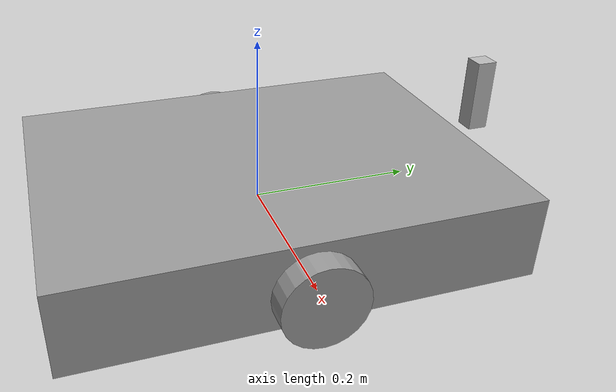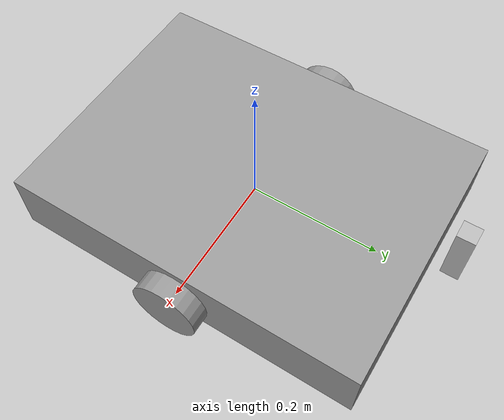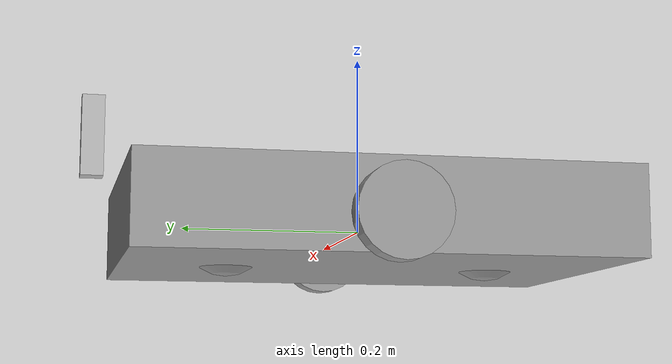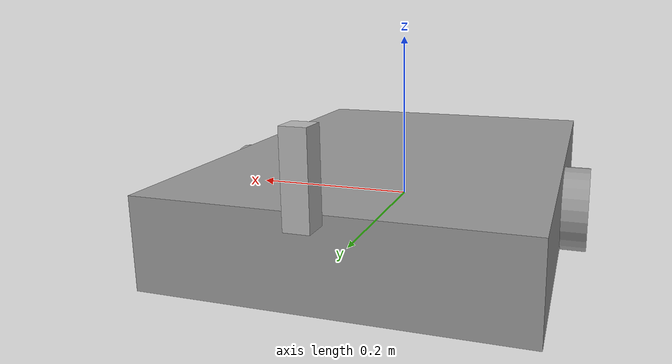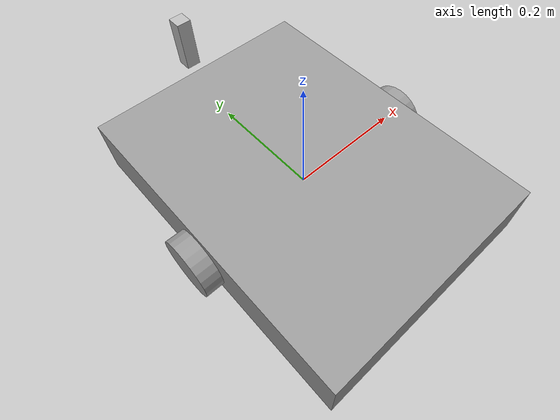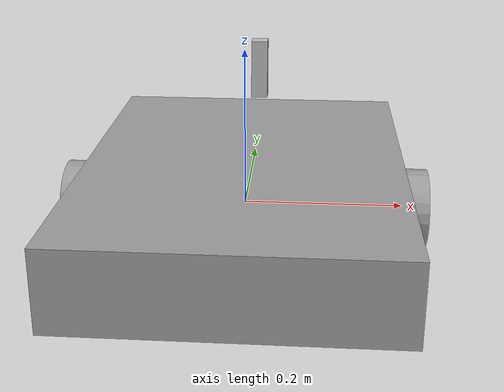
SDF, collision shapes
<?xml version='1.0'?>
<sdf version='1.7'>
  <model name='truck03'><!--Tを削除-->
    <link name='link_0'>
      <inertial>
        <mass>1</mass>
        <inertia>
          <ixx>0.166667</ixx>
          <ixy>0</ixy>
          <ixz>0</ixz>
          <iyy>0.166667</iyy>
          <iyz>0</iyz>
          <izz>0.166667</izz>
        </inertia>
        <pose>0 0 0 0 -0 0</pose>
      </inertial>
      <pose>0 0 0.008 0 -0 0</pose>
      <gravity>1</gravity>
      <self_collide>0</self_collide>
      <kinematic>0</kinematic>
      <enable_wind>0</enable_wind>
      <visual name='visual'>
        <pose>0 0 0 0 -0 0</pose>
        <geometry>
          <box>
            <size>0.4 0.54 0.1</size>
          </box>
        </geometry>
        <material>
          <lighting>1</lighting>
          <script>
            <uri>file://media/materials/scripts/gazebo.material</uri>
            <name>Gazebo/Grey</name>
          </script>
          <shader type='pixel'>
            <normal_map>__default__</normal_map>
          </shader>
          <ambient>0 0 0 1</ambient>
          <diffuse>0 0 0 1</diffuse>
          <specular>0 0 0 1</specular>
          <emissive>0 0 0 1</emissive>
        </material>
        <transparency>0</transparency>
        <cast_shadows>1</cast_shadows>
      </visual>
      <collision name='collision'>
        <laser_retro>0</laser_retro>
        <max_contacts>10</max_contacts>
        <pose>0 0 0 0 -0 0</pose>
        <geometry>
          <box>
            <size>0.4 0.54 0.1</size>
          </box>
        </geometry>
        <surface>
          <friction>
            <ode>
              <mu>1</mu>
              <mu2>1</mu2>
              <fdir1>0 0 0</fdir1>
              <slip1>0</slip1>
              <slip2>0</slip2>
            </ode>
            <torsional>
              <coefficient>1</coefficient>
              <patch_radius>0</patch_radius>
              <surface_radius>0</surface_radius>
              <use_patch_radius>1</use_patch_radius>
              <ode>
                <slip>0</slip>
              </ode>
            </torsional>
          </friction>
          <bounce>
            <restitution_coefficient>0</restitution_coefficient>
            <threshold>1e+06</threshold>
          </bounce>
          <contact>
            <collide_without_contact>0</collide_without_contact>
            <collide_without_contact_bitmask>1</collide_without_contact_bitmask>
            <collide_bitmask>1</collide_bitmask>
            <ode>
              <soft_cfm>0</soft_cfm>
              <soft_erp>0.2</soft_erp>
              <kp>1e+13</kp>
              <kd>1</kd>
              <max_vel>0.01</max_vel>
              <min_depth>0</min_depth>
            </ode>
            <bullet>
              <split_impulse>1</split_impulse>
              <split_impulse_penetration_threshold>-0.01</split_impulse_penetration_threshold>
              <soft_cfm>0</soft_cfm>
              <soft_erp>0.2</soft_erp>
              <kp>1e+13</kp>
              <kd>1</kd>
            </bullet>
          </contact>
        </surface>
      </collision>
    </link>

    <plugin name="gazebo_ros_diff_drive" filename="libgazebo_ros_diff_drive.so">
      <ros>
        <!-- ROSパラメーターの設定 -->
        <namespace>/</namespace>
        <remapping>cmd_vel:=cmd_vel</remapping>
      </ros>
      <left_joint>link_0_JOINT_1</left_joint>
      <right_joint>link_0_JOINT_0</right_joint>
      <legacy_mode>false</legacy_mode>
      <publish_odom>true</publish_odom>
      <publish_odom_tf>true</publish_odom_tf>
      <command_topic>cmd_vel</command_topic>
      <odometry_frame>odom</odometry_frame>
      <odometry_topic>odom</odometry_topic>
      <robot_base_frame>base_footprint</robot_base_frame>
      <!-- 車輪の間隔と直径 -->
      <update_rate>20</update_rate>
      <wheel_separation>0.43</wheel_separation>
      <wheel_diameter>0.1</wheel_diameter>
      <!-- モータの最大トルク -->
      <torque>15</torque>
      <command_timeout>0.5</command_timeout>
      <publish_wheel_tf>true</publish_wheel_tf>
      <publish_wheel_joint_state>true</publish_wheel_joint_state>
    </plugin>

    <link name='link_5'>
      <inertial>
        <mass>7</mass>
        <inertia>
          <ixx>0.1</ixx>
          <ixy>0</ixy>
          <ixz>0</ixz>
          <iyy>0.1</iyy>
          <iyz>0</iyz>
          <izz>0.1</izz>
        </inertia>
        <pose>0 0 0 0 -0 0</pose>
      </inertial>
      <pose>0 0.15 -0.002 0 -0 0</pose>
      <gravity>1</gravity>
      <self_collide>0</self_collide>
      <kinematic>0</kinematic>
      <enable_wind>0</enable_wind>
      <visual name='visual'>
        <pose>0 0 0 0 -0 0</pose>
        <geometry>
          <sphere>
            <radius>0.05</radius>
          </sphere>
        </geometry>
        <material>
          <lighting>1</lighting>
          <script>
            <uri>file://media/materials/scripts/gazebo.material</uri>
            <name>Gazebo/Grey</name>
          </script>
          <shader type='pixel'>
            <normal_map>__default__</normal_map>
          </shader>
          <ambient>0.3 0.3 0.3 1</ambient>
          <diffuse>0.7 0.7 0.7 1</diffuse>
          <specular>0.01 0.01 0.01 1</specular>
          <emissive>0 0 0 1</emissive>
        </material>
        <transparency>0</transparency>
        <cast_shadows>1</cast_shadows>
      </visual>
      <collision name='collision'>
        <laser_retro>0</laser_retro>
        <max_contacts>10</max_contacts>
        <pose>0 0 0 0 -0 0</pose>
        <geometry>
          <sphere>
            <radius>0.05</radius>
          </sphere>
        </geometry>
        <surface>
          <friction>
            <ode>
              <mu>1</mu>
              <mu2>1</mu2>
              <fdir1>0 0 0</fdir1>
              <slip1>0</slip1>
              <slip2>0</slip2>
            </ode>
            <torsional>
              <coefficient>1</coefficient>
              <patch_radius>0</patch_radius>
              <surface_radius>0</surface_radius>
              <use_patch_radius>1</use_patch_radius>
              <ode>
                <slip>0</slip>
              </ode>
            </torsional>
          </friction>
          <bounce>
            <restitution_coefficient>0</restitution_coefficient>
            <threshold>1e+06</threshold>
          </bounce>
          <contact>
            <collide_without_contact>0</collide_without_contact>
            <collide_without_contact_bitmask>1</collide_without_contact_bitmask>
            <collide_bitmask>1</collide_bitmask>
            <ode>
              <soft_cfm>0</soft_cfm>
              <soft_erp>0.2</soft_erp>
              <kp>1e+13</kp>
              <kd>1</kd>
              <max_vel>0.01</max_vel>
              <min_depth>0</min_depth>
            </ode>
            <bullet>
              <split_impulse>1</split_impulse>
              <split_impulse_penetration_threshold>-0.01</split_impulse_penetration_threshold>
              <soft_cfm>0</soft_cfm>
              <soft_erp>0.2</soft_erp>
              <kp>1e+13</kp>
              <kd>1</kd>
            </bullet>
          </contact>
        </surface>
      </collision>
    </link>
    <link name='link_5_clone'>
      <inertial>
        <mass>7</mass>
        <inertia>
          <ixx>0.1</ixx>
          <ixy>0</ixy>
          <ixz>0</ixz>
          <iyy>0.1</iyy>
          <iyz>0</iyz>
          <izz>0.1</izz>
        </inertia>
        <pose>0 0 0 0 -0 0</pose>
      </inertial>
      <pose>0 -0.15 -0.002 0 -0 0</pose>
      <gravity>1</gravity>
      <self_collide>0</self_collide>
      <kinematic>0</kinematic>
      <enable_wind>0</enable_wind>
      <visual name='visual'>
        <pose>0 0 0 0 -0 0</pose>
        <geometry>
          <sphere>
            <radius>0.05</radius>
          </sphere>
        </geometry>
        <material>
          <lighting>1</lighting>
          <script>
            <uri>file://media/materials/scripts/gazebo.material</uri>
            <name>Gazebo/Grey</name>
          </script>
          <shader type='pixel'>
            <normal_map>__default__</normal_map>
          </shader>
          <ambient>0.3 0.3 0.3 1</ambient>
          <diffuse>0.7 0.7 0.7 1</diffuse>
          <specular>0.01 0.01 0.01 1</specular>
          <emissive>0 0 0 1</emissive>
        </material>
        <transparency>0</transparency>
        <cast_shadows>1</cast_shadows>
      </visual>
      <collision name='collision'>
        <laser_retro>0</laser_retro>
        <max_contacts>10</max_contacts>
        <pose>0 0 0 0 -0 0</pose>
        <geometry>
          <sphere>
            <radius>0.05</radius>
          </sphere>
        </geometry>
        <surface>
          <friction>
            <ode>
              <mu>1</mu>
              <mu2>1</mu2>
              <fdir1>0 0 0</fdir1>
              <slip1>0</slip1>
              <slip2>0</slip2>
            </ode>
            <torsional>
              <coefficient>1</coefficient>
              <patch_radius>0</patch_radius>
              <surface_radius>0</surface_radius>
              <use_patch_radius>1</use_patch_radius>
              <ode>
                <slip>0</slip>
              </ode>
            </torsional>
          </friction>
          <bounce>
            <restitution_coefficient>0</restitution_coefficient>
            <threshold>1e+06</threshold>
          </bounce>
          <contact>
            <collide_without_contact>0</collide_without_contact>
            <collide_without_contact_bitmask>1</collide_without_contact_bitmask>
            <collide_bitmask>1</collide_bitmask>
            <ode>
              <soft_cfm>0</soft_cfm>
              <soft_erp>0.2</soft_erp>
              <kp>1e+13</kp>
              <kd>1</kd>
              <max_vel>0.01</max_vel>
              <min_depth>0</min_depth>
            </ode>
            <bullet>
              <split_impulse>1</split_impulse>
              <split_impulse_penetration_threshold>-0.01</split_impulse_penetration_threshold>
              <soft_cfm>0</soft_cfm>
              <soft_erp>0.2</soft_erp>
              <kp>1e+13</kp>
              <kd>1</kd>
            </bullet>
          </contact>
        </surface>
      </collision>
    </link>
    <link name='link_6'>
      <inertial>
        <mass>1</mass>
        <inertia>
          <ixx>0.145833</ixx>
          <ixy>0</ixy>
          <ixz>0</ixz>
          <iyy>0.145833</iyy>
          <iyz>0</iyz>
          <izz>0.125</izz>
        </inertia>
        <pose>0 0 0 0 -0 0</pose>
      </inertial>
      <pose>0.215 0 -0.002 0 1.5707 0</pose>
      <gravity>1</gravity>
      <self_collide>0</self_collide>
      <kinematic>0</kinematic>
      <enable_wind>0</enable_wind>
      <visual name='visual'>
        <pose>0 0 0 0 -0 0</pose>
        <geometry>
          <cylinder>
            <radius>0.05</radius>
            <length>0.03</length>
          </cylinder>
        </geometry>
        <material>
          <lighting>1</lighting>
          <script>
            <uri>file://media/materials/scripts/gazebo.material</uri>
            <name>Gazebo/Grey</name>
          </script>
          <shader type='pixel'>
            <normal_map>__default__</normal_map>
          </shader>
          <ambient>0.3 0.3 0.3 1</ambient>
          <diffuse>0.7 0.7 0.7 1</diffuse>
          <specular>0.01 0.01 0.01 1</specular>
          <emissive>0 0 0 1</emissive>
        </material>
        <transparency>0</transparency>
        <cast_shadows>1</cast_shadows>
      </visual>
      <collision name='collision'>
        <laser_retro>0</laser_retro>
        <max_contacts>10</max_contacts>
        <pose>0 0 0 0 -0 0</pose>
        <geometry>
          <cylinder>
            <radius>0.05</radius>
            <length>0.03</length>
          </cylinder>
        </geometry>
        <surface>
          <friction>
            <ode>
              <mu>1</mu>
              <mu2>1</mu2>
              <fdir1>0 0 0</fdir1>
              <slip1>0</slip1>
              <slip2>0</slip2>
            </ode>
            <torsional>
              <coefficient>1</coefficient>
              <patch_radius>0</patch_radius>
              <surface_radius>0</surface_radius>
              <use_patch_radius>1</use_patch_radius>
              <ode>
                <slip>0</slip>
              </ode>
            </torsional>
          </friction>
          <bounce>
            <restitution_coefficient>0</restitution_coefficient>
            <threshold>1e+06</threshold>
          </bounce>
          <contact>
            <collide_without_contact>0</collide_without_contact>
            <collide_without_contact_bitmask>1</collide_without_contact_bitmask>
            <collide_bitmask>1</collide_bitmask>
            <ode>
              <soft_cfm>0</soft_cfm>
              <soft_erp>0.2</soft_erp>
              <kp>1e+13</kp>
              <kd>1</kd>
              <max_vel>0.01</max_vel>
              <min_depth>0</min_depth>
            </ode>
            <bullet>
              <split_impulse>1</split_impulse>
              <split_impulse_penetration_threshold>-0.01</split_impulse_penetration_threshold>
              <soft_cfm>0</soft_cfm>
              <soft_erp>0.2</soft_erp>
              <kp>1e+13</kp>
              <kd>1</kd>
            </bullet>
          </contact>
        </surface>
      </collision>
    </link>
    <link name='link_6_clone'>
      <inertial>
        <mass>1</mass>
        <inertia>
          <ixx>0.145833</ixx>
          <ixy>0</ixy>
          <ixz>0</ixz>
          <iyy>0.145833</iyy>
          <iyz>0</iyz>
          <izz>0.125</izz>
        </inertia>
        <pose>0 0 0 0 -0 0</pose>
      </inertial>
      <pose>-0.215 0 -0.002 0 1.5707 0</pose>
      <gravity>1</gravity>
      <self_collide>0</self_collide>
      <kinematic>0</kinematic>
      <enable_wind>0</enable_wind>
      <visual name='visual'>
        <pose>0 0 0 0 -0 0</pose>
        <geometry>
          <cylinder>
            <radius>0.05</radius>
            <length>0.03</length>
          </cylinder>
        </geometry>
        <material>
          <lighting>1</lighting>
          <script>
            <uri>file://media/materials/scripts/gazebo.material</uri>
            <name>Gazebo/Grey</name>
          </script>
          <shader type='pixel'>
            <normal_map>__default__</normal_map>
          </shader>
          <ambient>0.3 0.3 0.3 1</ambient>
          <diffuse>0.7 0.7 0.7 1</diffuse>
          <specular>0.01 0.01 0.01 1</specular>
          <emissive>0 0 0 1</emissive>
        </material>
        <transparency>0</transparency>
        <cast_shadows>1</cast_shadows>
      </visual>
      <collision name='collision'>
        <laser_retro>0</laser_retro>
        <max_contacts>10</max_contacts>
        <pose>0 0 0 0 -0 0</pose>
        <geometry>
          <cylinder>
            <radius>0.05</radius>
            <length>0.03</length>
          </cylinder>
        </geometry>
        <surface>
          <friction>
            <ode>
              <mu>1</mu>
              <mu2>1</mu2>
              <fdir1>0 0 0</fdir1>
              <slip1>0</slip1>
              <slip2>0</slip2>
            </ode>
            <torsional>
              <coefficient>1</coefficient>
              <patch_radius>0</patch_radius>
              <surface_radius>0</surface_radius>
              <use_patch_radius>1</use_patch_radius>
              <ode>
                <slip>0</slip>
              </ode>
            </torsional>
          </friction>
          <bounce>
            <restitution_coefficient>0</restitution_coefficient>
            <threshold>1e+06</threshold>
          </bounce>
          <contact>
            <collide_without_contact>0</collide_without_contact>
            <collide_without_contact_bitmask>1</collide_without_contact_bitmask>
            <collide_bitmask>1</collide_bitmask>
            <ode>
              <soft_cfm>0</soft_cfm>
              <soft_erp>0.2</soft_erp>
              <kp>1e+13</kp>
              <kd>1</kd>
              <max_vel>0.01</max_vel>
              <min_depth>0</min_depth>
            </ode>
            <bullet>
              <split_impulse>1</split_impulse>
              <split_impulse_penetration_threshold>-0.01</split_impulse_penetration_threshold>
              <soft_cfm>0</soft_cfm>
              <soft_erp>0.2</soft_erp>
              <kp>1e+13</kp>
              <kd>1</kd>
            </bullet>
          </contact>
        </surface>
      </collision>
    </link>
    <joint name='link_0_JOINT_0' type='revolute'>
      <parent>link_0</parent>
      <child>link_6_clone</child>
      <pose>0 0 0 0 -0 0</pose>
      <axis>
        <xyz>0 0 1</xyz>
        <limit>
          <lower>-1.79769e+308</lower>
          <upper>1.79769e+308</upper>
          <effort>-1</effort>
          <velocity>-1</velocity>
        </limit>
        <dynamics>
          <spring_reference>0</spring_reference>
          <spring_stiffness>0</spring_stiffness>
          <damping>0</damping>
        </dynamics>
      </axis>
      <physics>
        <ode>
          <limit>
            <cfm>0</cfm>
            <erp>0.2</erp>
          </limit>
          <suspension>
            <cfm>0</cfm>
            <erp>0.2</erp>
          </suspension>
        </ode>
      </physics>
    </joint>
    <joint name='link_0_JOINT_1' type='revolute'>
      <parent>link_0</parent>
      <child>link_6</child>
      <pose>0 0 0 0 -0 0</pose>
      <axis>
        <xyz>0 0 1</xyz>
        <limit>
          <lower>-1.79769e+308</lower>
          <upper>1.79769e+308</upper>
          <effort>-1</effort>
          <velocity>-1</velocity>
        </limit>
        <dynamics>
          <spring_reference>0</spring_reference>
          <spring_stiffness>0</spring_stiffness>
          <damping>0</damping>
        </dynamics>
      </axis>
      <physics>
        <ode>
          <limit>
            <cfm>0</cfm>
            <erp>0.2</erp>
          </limit>
          <suspension>
            <cfm>0</cfm>
            <erp>0.2</erp>
          </suspension>
        </ode>
      </physics>
    </joint>
    <joint name='link_0_JOINT_2' type='ball'>
      <parent>link_0</parent>
      <child>link_5</child>
      <pose>0 0 0 0 -0 0</pose>
      <physics>
        <ode>
          <limit>
            <cfm>0</cfm>
            <erp>0.2</erp>
          </limit>
          <suspension>
            <cfm>0</cfm>
            <erp>0.2</erp>
          </suspension>
        </ode>
      </physics>
    </joint>
    <joint name='link_0_JOINT_3' type='ball'>
      <parent>link_0</parent>
      <child>link_5_clone</child>
      <pose>0 0 0 0 -0 0</pose>
      <physics>
        <ode>
          <limit>
            <cfm>0</cfm>
            <erp>0.2</erp>
          </limit>
          <suspension>
            <cfm>0</cfm>
            <erp>0.2</erp>
          </suspension>
        </ode>
      </physics>
    </joint>
    <static>0</static>
    <allow_auto_disable>1</allow_auto_disable>

    <link name="realsense_link">
      <pose>0 0.3 0.1 0 0 1.57</pose>
      <visual name="realsense_link_visual">
        <pose>0 0 0 -1.57 0 -1.57</pose>
        <geometry>
          <mesh>
            <uri>model://d435.dae</uri>
          </mesh>
        </geometry>
      </visual>
      <collision name="realsense_link_collision">
        <pose>0 0 0 -1.57 0 -1.57</pose>
        <geometry>
          <box>
            <size>0.02505 0.090 0.025</size>
          </box>
        </geometry>
      </collision>
      <inertial>
        <pose>0 0 0 0 0 0</pose>
        <inertia>
          <ixx>0.001</ixx>
          <ixy>0.000</ixy>
          <ixz>0.000</ixz>
          <iyy>0.001</iyy>
          <iyz>0.000</iyz>
          <izz>0.001</izz>
        </inertia>
        <mass>0.564</mass>
      </inertial>

      <sensor name="cameradepth" type="depth">
        <camera name="camera">
          <horizontal_fov>1.57</horizontal_fov>
          <image>
            <width>1280</width>
            <height>720</height>
          </image>
          <clip>
            <near>0.1</near>
            <far>100</far>
          </clip>
          <noise>
            <type>gaussian</type>
            <mean>0.0</mean>
            <stddev>0.100</stddev>
          </noise>
        </camera>
        <always_on>1</always_on>
        <update_rate>30</update_rate>
        <visualize>0</visualize>
      </sensor>
      <sensor name="cameracolor" type="camera">
        <camera name="camera">
          <horizontal_fov>1.57</horizontal_fov>
          <image>
            <width>1280</width>
            <height>720</height>
            <format>RGB_INT8</format>
          </image>
          <clip>
            <near>0.1</near>
            <far>100</far>
          </clip>
          <noise>
            <type>gaussian</type>
            <mean>0.0</mean>
            <stddev>0.007</stddev>
          </noise>
        </camera>
        <always_on>1</always_on>
        <update_rate>30</update_rate>
        <visualize>1</visualize>
      </sensor>
      <sensor name="cameraired1" type="camera">
        <camera name="camera">
          <horizontal_fov>1.57</horizontal_fov>
          <image>
            <width>1280</width>
            <height>720</height>
            <format>L_INT8</format>
          </image>
          <clip>
            <near>0.1</near>
            <far>100</far>
          </clip>
          <noise>
            <type>gaussian</type>
            <mean>0.0</mean>
            <stddev>0.05</stddev>
          </noise>
        </camera>
        <always_on>1</always_on>
        <update_rate>1</update_rate>
        <visualize>0</visualize>
      </sensor>
      <sensor name="cameraired2" type="camera">
        <camera name="camera">
          <horizontal_fov>1.57</horizontal_fov>
          <image>
            <width>1280</width>
            <height>720</height>
            <format>L_INT8</format>
          </image>
          <clip>
            <near>0.1</near>
            <far>100</far>
          </clip>
          <noise>
            <type>gaussian</type>
            <mean>0.0</mean>
            <stddev>0.05</stddev>
          </noise>
        </camera>
        <always_on>1</always_on>
        <update_rate>1</update_rate>
        <visualize>0</visualize>
      </sensor>
    </link>

    <joint name="realsense_joint" type="fixed">
      <parent>link_0</parent>
      <child>realsense_link</child>
      <pose>0.4 0 0.4 -1.57 0 -1.57</pose>
    </joint>

    <plugin name="camera" filename="librealsense_gazebo_plugin.so">
      <prefix>camera</prefix>
      <depthUpdateRate>10.0</depthUpdateRate>
      <colorUpdateRate>10.0</colorUpdateRate>
      <infraredUpdateRate>1.0</infraredUpdateRate>
      <depthTopicName>aligned_depth_to_color/image_raw</depthTopicName>
      <depthCameraInfoTopicName>depth/camera_info</depthCameraInfoTopicName>
      <colorTopicName>color/image_raw</colorTopicName>
      <colorCameraInfoTopicName>color/camera_info</colorCameraInfoTopicName>
      <infrared1TopicName>infra1/image_raw</infrared1TopicName>
      <infrared1CameraInfoTopicName>infra1/camera_info</infrared1CameraInfoTopicName>
      <infrared2TopicName>infra2/image_raw</infrared2TopicName>
      <infrared2CameraInfoTopicName>infra2/camera_info</infrared2CameraInfoTopicName>
      <colorOpticalframeName>camera_color_optical_frame</colorOpticalframeName>
      <depthOpticalframeName>camera_depth_optical_frame</depthOpticalframeName>
      <infrared1OpticalframeName>camera_left_ir_optical_frame</infrared1OpticalframeName>
      <infrared2OpticalframeName>camera_right_ir_optical_frame</infrared2OpticalframeName>
      <rangeMinDepth>0.2</rangeMinDepth>
      <rangeMaxDepth>10.0</rangeMaxDepth>
      <pointCloud>true</pointCloud>
      <pointCloudTopicName>depth/color/points</pointCloudTopicName>
      <pointCloudCutoff>0.25</pointCloudCutoff>
      <pointCloudCutoffMax>9.0</pointCloudCutoffMax>
    </plugin>
  </model>
</sdf>
